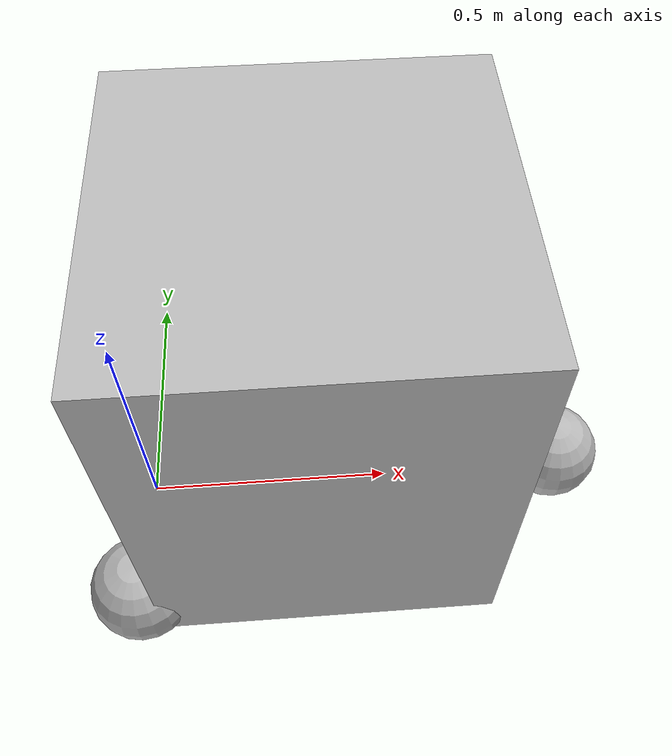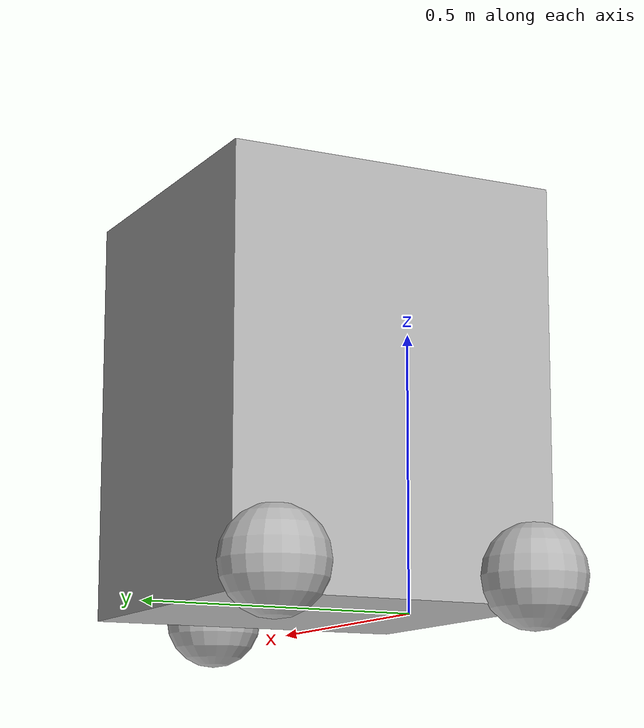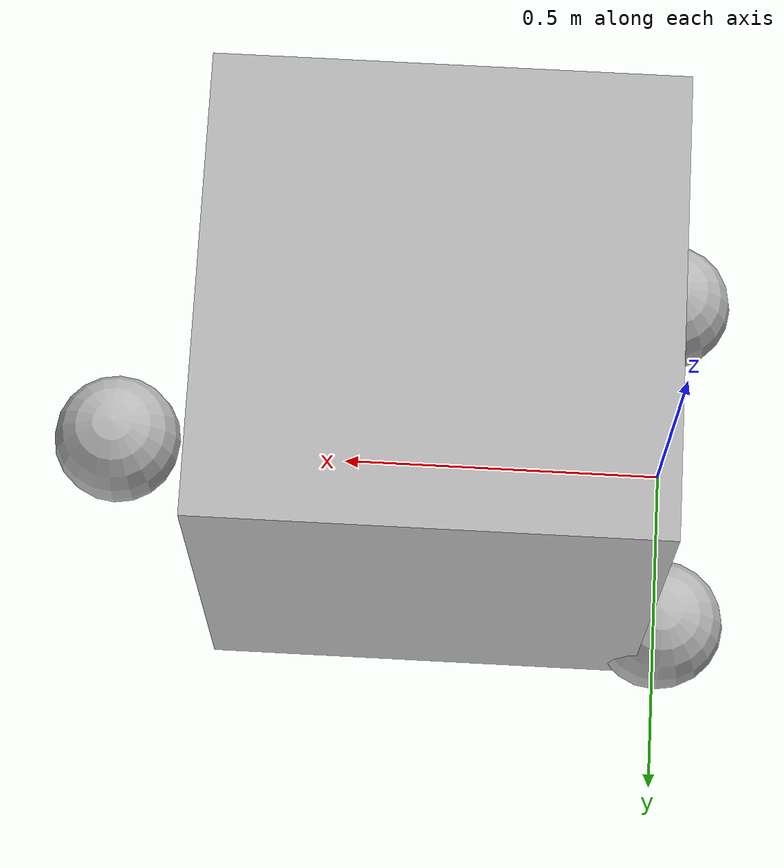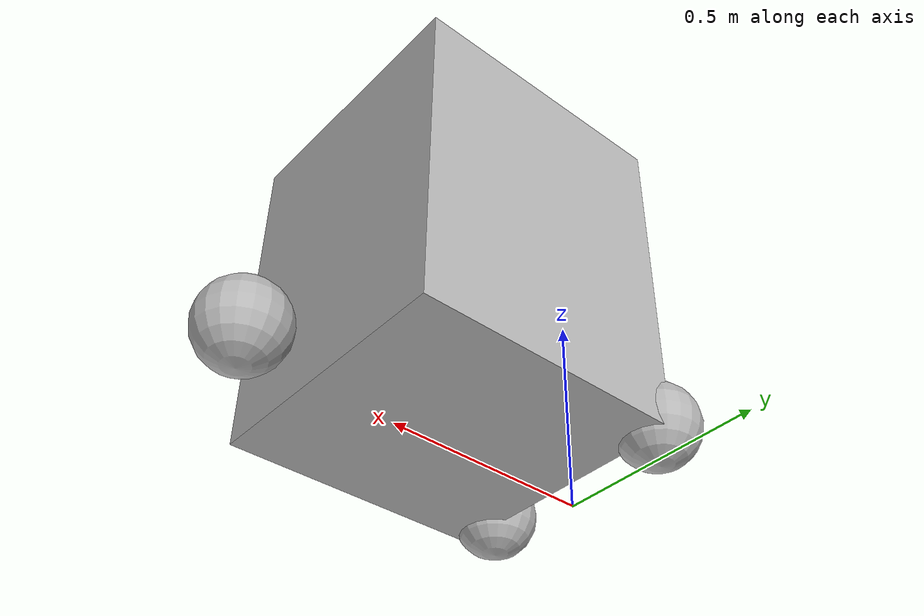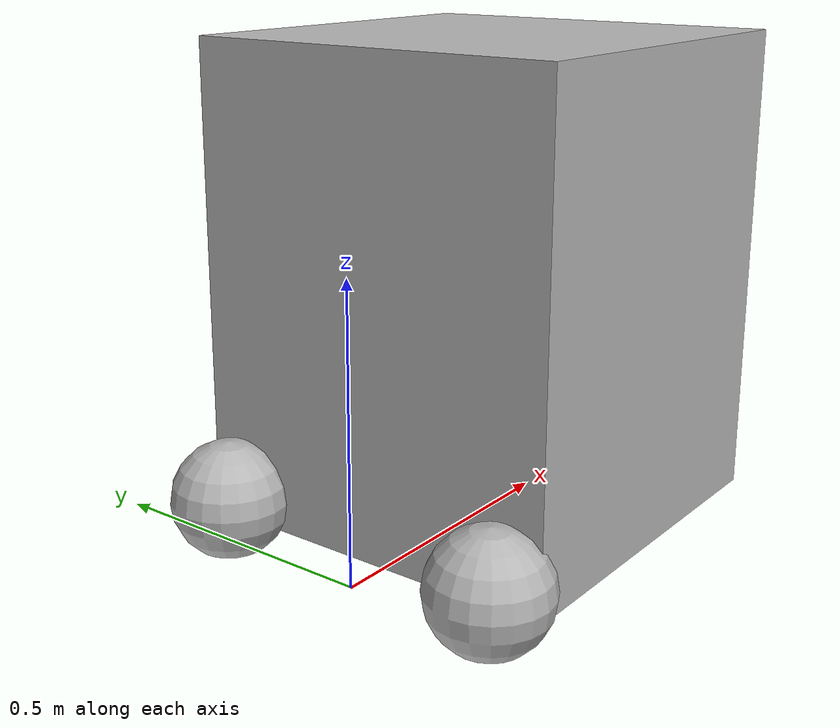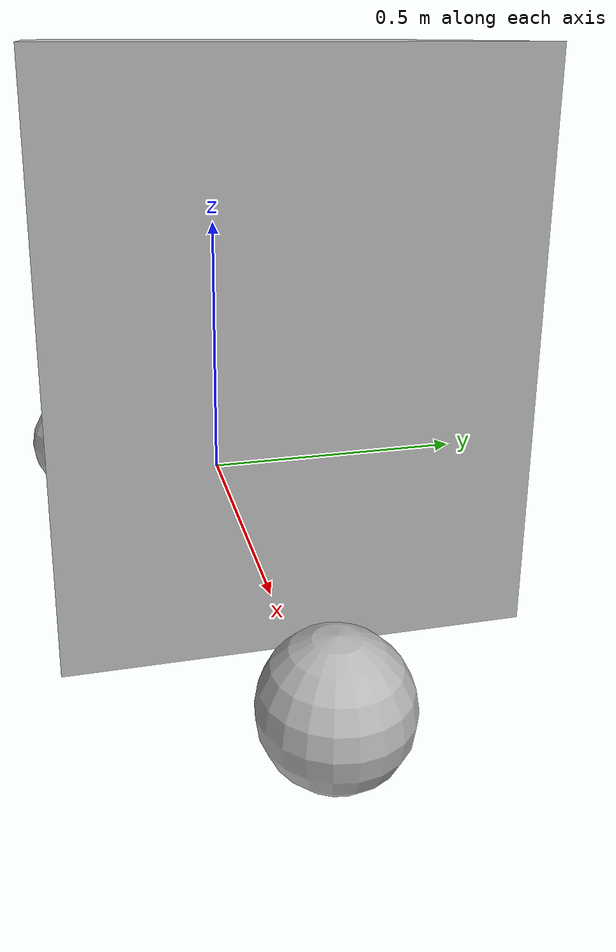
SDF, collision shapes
<?xml version="1.0"?>

<sdf version="1.6">
  <model name='CleanerBotA'>

    <!-- TODO: Find actual physical properties for CleanerBotA instead of duplicating -->
    <!-- Note: rotational axis of the robot should located at the origin  -->

    <plugin name="slotcar" filename="libslotcar.so">

      <!-- Forward / Backward -->

      <nominal_drive_speed>4.0</nominal_drive_speed>
      <nominal_drive_acceleration>1.5</nominal_drive_acceleration>
      <max_drive_acceleration>1.6</max_drive_acceleration>

      <!-- Turning -->
      <nominal_turn_speed>0.8</nominal_turn_speed>
      <nominal_turn_acceleration>1.0</nominal_turn_acceleration>
      <max_turn_acceleration>1.2</max_turn_acceleration>

      <!-- Stop distance and radius  -->
      <stop_distance>1.5</stop_distance>
      <stop_radius>1.5</stop_radius>

      <!-- Can the robot drive backwards -->
      <reversible>false</reversible>

      <!-- Battery params -->
      <nominal_voltage>24.0</nominal_voltage>
      <nominal_capacity>20.0</nominal_capacity>
      <charging_current>10.0</charging_current>

      <!-- Physical params -->
      <mass>70.0</mass>
      <inertia>40.0</inertia>
      <friction_coefficient>0.22</friction_coefficient>

      <!-- Power systems -->
      <nominal_power>100.0</nominal_power>

    </plugin>

    <!-- Main CleanerBotA Body -->

    <link name="body">
      <pose>0 0 0 0 0 0</pose>

      <inertial>
        <pose>0.36 0 0.43294142 0 0 0</pose>
        <mass>15.0</mass> <!-- Mass reduced to prevent model rolling when stationary -->
        <inertia>
          <ixx>3.016</ixx>
          <iyy>2.332</iyy>
          <izz>2.425</izz>
        </inertia>
      </inertial>

      <visual name="visual">
        <pose frame=''>0.36 0 0 0 0 0</pose>
        <geometry>
          <mesh><uri>model://CleanerBotA/meshes/CleanerBotA.obj</uri></mesh>
        </geometry>
      </visual>
      <collision name="body_collision">
        <pose frame=''>0.36 0 0.43 0 0 0</pose>
        <geometry>
          <box>
            <size>0.65 0.65 0.8</size>
          </box>
        </geometry>
      </collision>

      <visual name="WheelFront">
        <pose>0.86 0.0 0.07 0 0 0</pose>
        <geometry>
          <mesh>
            <uri>model://CleanerBotA/meshes/CleanerBotA_WheelFront.obj</uri>
          </mesh>
        </geometry>
      </visual>
      <collision name='front_wheel_collision'>
        <pose>0.86 0.0 0.06 0 0 0</pose>
        <geometry>
          <sphere>
            <radius>0.1</radius>
          </sphere>
        </geometry>
        <surface>
          <contact>
            <ode>
              <kp>1e+08</kp>
              <min_depth>0.005</min_depth>
            </ode>
          </contact>
          <friction>
            <ode>
              <mu>0</mu>
              <mu2>0</mu2>
            </ode>
          </friction>
        </surface>
      </collision>

      <sensor name='front_laser' type='gpu_lidar'>
        <pose frame=''>0.8 0 0.8 0 0 0</pose>
        <always_on>1</always_on>
        <update_rate>10</update_rate>
        <visualize>false</visualize>
        <topic>/cleanerbota_scan</topic>
        <lidar>
          <scan>
            <horizontal>
              <samples>360</samples>
              <resolution>1</resolution>
              <min_angle>-1.5708</min_angle>
              <max_angle>1.5708</max_angle>
            </horizontal>
          </scan>
          <range>
            <min>0.05</min>
            <max>8.0</max>
            <resolution>0.01</resolution>
          </range>
        </lidar>
      </sensor>

    </link>

    <!-- Left wheel link and revolute joint -->

    <link name="tire_left">
      <pose>0 0.26 0.08 0 0 0</pose>

      <inertial>
        <pose>0 0 0 0 0 0</pose>
        <mass>5.0</mass>
        <inertia>
          <ixx>0.02</ixx>
          <iyy>0.02</iyy>
          <izz>0.02</izz>
        </inertia>
      </inertial>

      <visual name="tire_left">
        <geometry>
          <mesh>
            <uri>model://CleanerBotA/meshes/CleanerBotA_WheelBack.obj</uri>
          </mesh>
        </geometry>
      </visual>

      <collision name='tire_left_collision'>
        <geometry>
          <sphere>
            <radius>0.1</radius>
          </sphere>
        </geometry>
        <surface>
          <contact>
            <ode>
              <kp>10000000.0</kp>
              <kd>1.0</kd>
            </ode>
          </contact>
        </surface>
      </collision>
    </link>

    <joint name="joint_tire_left" type="revolute">
      <parent>body</parent>
      <child>tire_left</child>
      <axis>
        <xyz>0 1 0</xyz>
      </axis>
    </joint>

    <!-- Right wheel link and revolute joint -->

    <link name="tire_right">
      <pose>0 -0.26 0.08 0 0 0</pose>
      <inertial>
        <pose>0 0 0 0 0 0</pose>
        <mass>5.0</mass>
        <inertia>
          <ixx>0.02</ixx>
          <iyy>0.02</iyy>
          <izz>0.02</izz>
        </inertia>
      </inertial>

      <visual name="tire_right">
        <geometry>
          <mesh>
            <uri>model://CleanerBotA/meshes/CleanerBotA_WheelBack.obj</uri>
          </mesh>
        </geometry>
      </visual>

      <collision name='tire_right_collision'>
        <geometry>
          <sphere>
            <radius>0.1</radius>
          </sphere>
        </geometry>
        <surface>
          <contact>
            <ode>
              <kp>10000000.0</kp>
              <kd>1.0</kd>
            </ode>
          </contact>
        </surface>
      </collision>
    </link>

    <joint name="joint_tire_right" type="revolute">
      <parent>body</parent>
      <child>tire_right</child>
      <axis>
        <xyz>0 1 0</xyz>
      </axis>
    </joint>

  </model>
</sdf>
